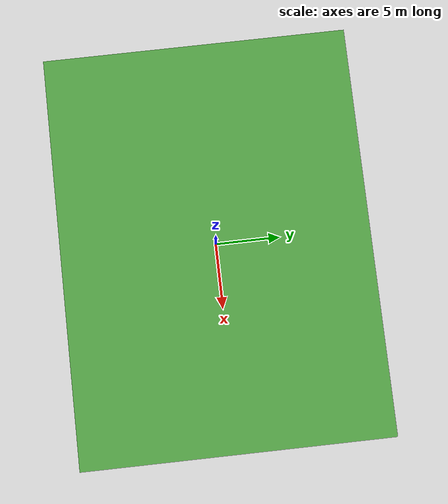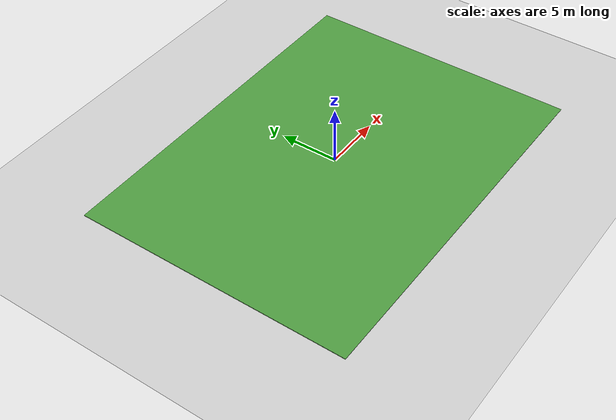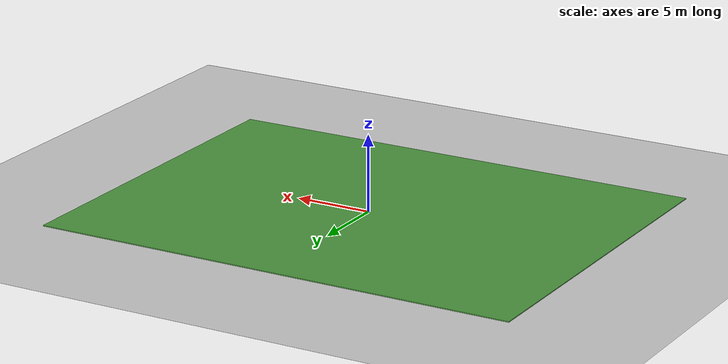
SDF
<sdf version="1.6">
 <world name="default">
  <light name="sun" type="directional">
   <pose>0 0 10 0 -0 0</pose>
   <diffuse>1 1 1 1</diffuse>
   <specular>1 1 1 1</specular>
   <attenuation>
    <range>1000</range>
    <constant>0.9</constant>
    <linear>0.01</linear>
    <quadratic>0.001</quadratic>
   </attenuation>
   <direction>-0.5 0.5 -1</direction>
  </light>
  <model name="ground_plane">
   <static>1</static>
   <link name="link">
    <collision name="collision">
     <geometry><plane><normal>0 0 1</normal><size>500 500</size></plane></geometry>
     <surface><friction><ode><mu>100</mu><mu2>50</mu2></ode></friction></surface>
    </collision>
    <visual name="visual">
     <cast_shadows>0</cast_shadows>
     <geometry><plane><normal>0 0 1</normal><size>500 500</size></plane></geometry>
     <material>
      <script><uri>file://media/materials/scripts/gazebo.material</uri><name>Gazebo/Grey</name></script>
     </material>
    </visual>
   </link>
  </model>
  <gravity>0 0 -9.8</gravity>
  <magnetic_field>6e-06 2.3e-05 -4.2e-05</magnetic_field>
  <atmosphere type="adiabatic"/>
  <physics name="default_physics" default="0" type="ode">
   <max_step_size>0.001</max_step_size>
   <real_time_factor>1</real_time_factor>
   <real_time_update_rate>1000</real_time_update_rate>
  </physics>
  <scene><ambient>0.4 0.4 0.4 1</ambient><background>0.7 0.7 0.7 1</background><shadows>0</shadows></scene>
  <spherical_coordinates>
   <surface_model>EARTH_WGS84</surface_model>
   <latitude_deg>0</latitude_deg>
   <longitude_deg>0</longitude_deg>
   <elevation>0</elevation>
   <heading_deg>0</heading_deg>
  </spherical_coordinates>
  <model name="mud_box_clone">
   <static>1</static>
   <link name="link">
    <collision name="collision"><geometry><box><size>32 24 0.2</size></box></geometry></collision>
    <visual name="visual_1">
     <cast_shadows>0</cast_shadows>
     <geometry><box><size>32 24 0.2</size></box></geometry>
     <material>
      <script>
       <uri>model://amphi_terrain/materials/scripts</uri>
       <uri>model://amphi_terrain/materials/textures</uri>
       <name>vrc/grass_water_terrain</name>
      </script>
     </material>
    </visual>
   </link>
   <pose>0 0 -0.08 0 -0 3.14159</pose>
  </model>
 </world>
</sdf>
